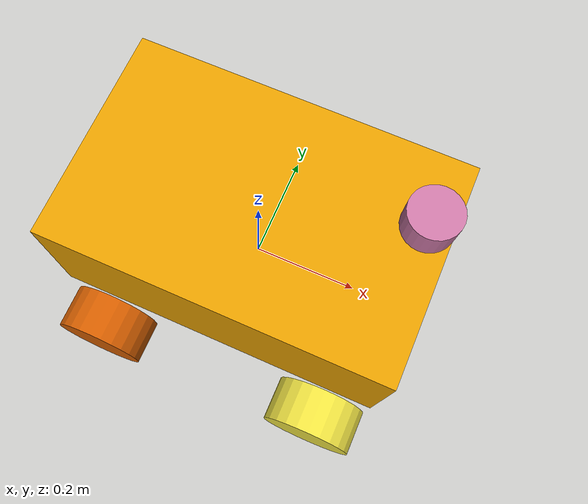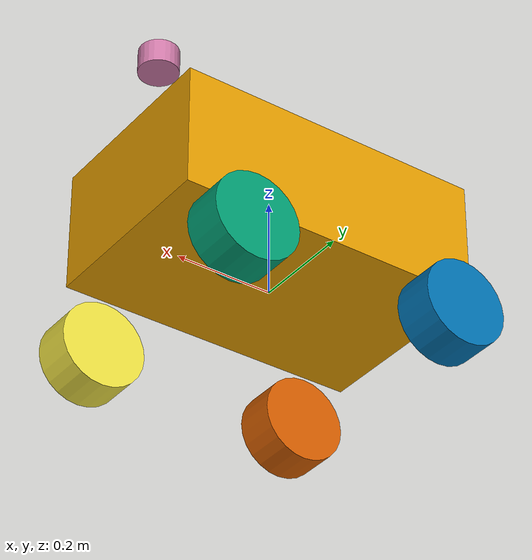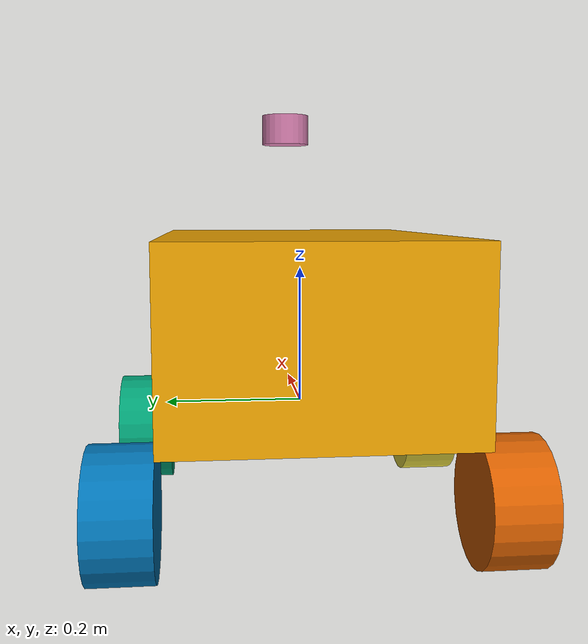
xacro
<?xml version="1.0"?>
<robot name="scout_mini" xmlns:xacro="http://ros.org/wiki/xacro">

  <xacro:property name="M_PI"         value="3.14159265359"/>
  <xacro:property name="body_length"  value="0.627"/>
  <xacro:property name="body_width"   value="0.400"/>
  <xacro:property name="body_height"  value="0.250"/>
  <xacro:property name="body_mass"    value="23.0"/>

  <xacro:property name="wheelbase"    value="0.452"/>
  <xacro:property name="track"        value="0.490"/>
  <xacro:property name="wheel_radius" value="0.0875"/>
  <xacro:property name="wheel_width"  value="0.0852"/>
  <xacro:property name="wheel_mass"   value="1.5"/>

  <!-- base_link is wheel_radius + |wheel_vertical_offset| above ground = 0.0875 + 0.0905 -->
  <xacro:property name="base_link_z"  value="0.178"/>

  <!-- LiDAR mount: xyz offset from base_link. Sensor is mounted flat (0° pitch). -->
  <!-- Measured: 25.5 cm forward, 40 cm above base_link -->
  <xacro:property name="lidar_x"      value="0.255"/>
  <xacro:property name="lidar_y"      value="0.0"/>
  <xacro:property name="lidar_z"      value="0.40"/>
  <xacro:property name="sensor_pitch_deg" value="0.0"/>
  <xacro:property name="sensor_pitch_rad" value="${sensor_pitch_deg * M_PI / 180.0}"/>

  <!-- wheel centre sits 0.0905 m below base_link origin (matches upstream datasheet) -->
  <xacro:property name="wheel_vertical_offset" value="-0.0905"/>

  <!-- ===== Wheel macro ===== -->
  <xacro:macro name="scout_mini_wheel" params="name x_offset y_offset">
    <link name="${name}_wheel_link">
      <visual>
        <geometry>
          <cylinder radius="${wheel_radius}" length="${wheel_width}"/>
        </geometry>
        <origin xyz="0 0 0" rpy="${M_PI/2} 0 0"/>
      </visual>
      <collision>
        <geometry>
          <cylinder radius="${wheel_radius}" length="${wheel_width}"/>
        </geometry>
        <origin xyz="0 0 0" rpy="${M_PI/2} 0 0"/>
      </collision>
      <inertial>
        <mass value="${wheel_mass}"/>
        <inertia ixx="0.004" ixy="0" ixz="0" iyy="0.004" iyz="0" izz="0.006"/>
      </inertial>
    </link>
    <joint name="${name}_wheel_joint" type="continuous">
      <parent link="base_link"/>
      <child link="${name}_wheel_link"/>
      <origin xyz="${x_offset} ${y_offset} ${wheel_vertical_offset}" rpy="0 0 0"/>
      <axis xyz="0 1 0"/>
    </joint>
  </xacro:macro>

  <!-- ===== base_link (root frame — EKF publishes odom→base_link) ===== -->
  <link name="base_link">
    <visual>
      <geometry>
        <box size="${body_length} ${body_width} ${body_height}"/>
      </geometry>
      <origin xyz="0 0 ${body_height/2}" rpy="0 0 0"/>
    </visual>
    <collision>
      <geometry>
        <box size="${body_length} ${body_width} ${body_height}"/>
      </geometry>
      <origin xyz="0 0 ${body_height/2}" rpy="0 0 0"/>
    </collision>
    <inertial>
      <mass value="${body_mass}"/>
      <origin xyz="0 0 ${body_height/2}" rpy="0 0 0"/>
      <inertia ixx="0.5" ixy="0" ixz="0" iyy="1.0" iyz="0" izz="0.8"/>
    </inertial>
  </link>

  <!-- base_footprint: ground-plane projection of base_link -->
  <link name="base_footprint"/>
  <joint name="base_footprint_joint" type="fixed">
    <parent link="base_link"/>
    <child link="base_footprint"/>
    <origin xyz="0 0 -${base_link_z}" rpy="0 0 0"/>
  </joint>

  <!-- ===== Wheels ===== -->
  <xacro:scout_mini_wheel name="front_left"  x_offset="${wheelbase/2}"  y_offset="${track/2}"/>
  <xacro:scout_mini_wheel name="front_right" x_offset="${wheelbase/2}"  y_offset="${-track/2}"/>
  <xacro:scout_mini_wheel name="rear_left"   x_offset="${-wheelbase/2}" y_offset="${track/2}"/>
  <xacro:scout_mini_wheel name="rear_right"  x_offset="${-wheelbase/2}" y_offset="${-track/2}"/>

  <!-- ===== LiDAR / IMU mount ===== -->
  <link name="lidar_mount_link">
    <visual>
      <geometry>
        <cylinder radius="0.04" length="0.05"/>
      </geometry>
      <origin xyz="0 0 0.025" rpy="0 0 0"/>
    </visual>
    <inertial>
      <mass value="0.3"/>
      <inertia ixx="0.0001" ixy="0" ixz="0" iyy="0.0001" iyz="0" izz="0.0001"/>
    </inertial>
  </link>

  <joint name="lidar_mount_joint" type="fixed">
    <parent link="base_link"/>
    <child link="lidar_mount_link"/>
    <origin xyz="${lidar_x} ${lidar_y} ${lidar_z}" rpy="0 ${sensor_pitch_rad} 0"/>
  </joint>

  <!-- imu_link: Livox MID360 built-in IMU, co-located with LiDAR -->
  <link name="imu_link"/>
  <joint name="imu_joint" type="fixed">
    <parent link="lidar_mount_link"/>
    <child link="imu_link"/>
    <origin xyz="0 0 0" rpy="0 0 0"/>
  </joint>

  <!-- livox_frame: LiDAR optical frame (used by livox_ros_driver2) -->
  <link name="livox_frame"/>
  <joint name="livox_frame_joint" type="fixed">
    <parent link="lidar_mount_link"/>
    <child link="livox_frame"/>
    <origin xyz="0 0 0" rpy="0 0 0"/>
  </joint>

  <!-- ===== ZED Mini stereo camera ===== -->
  <link name="zedm_camera_link"/>
  <joint name="zed_mount_joint" type="fixed">
    <parent link="lidar_mount_link"/>
    <child link="zedm_camera_link"/>
    <origin xyz="0.0 0.035 -0.02" rpy="0 0 0"/>
  </joint>

</robot>
